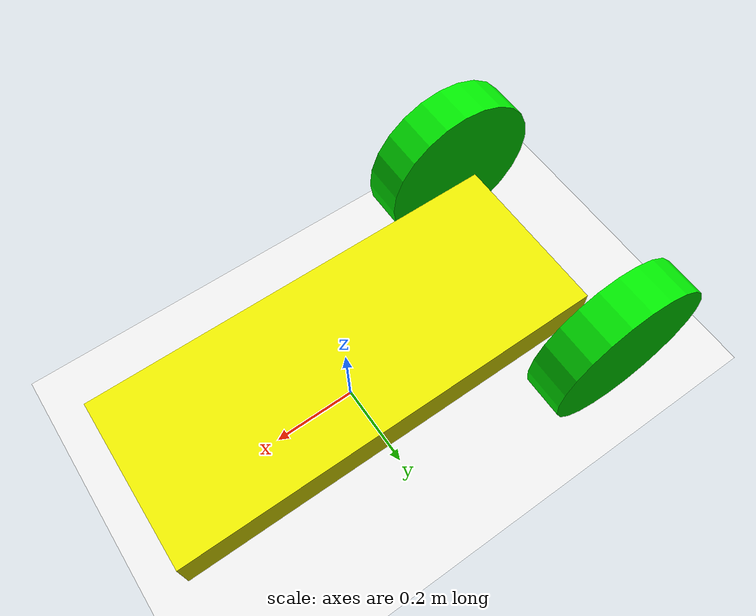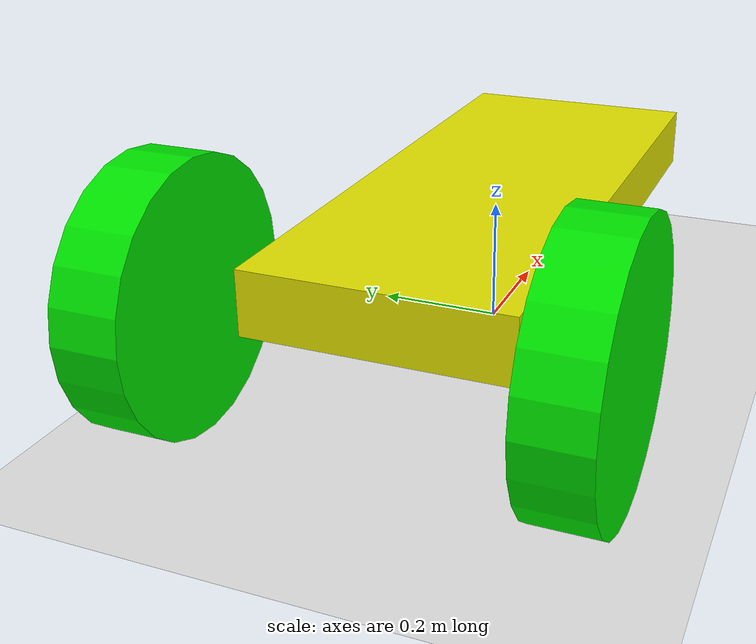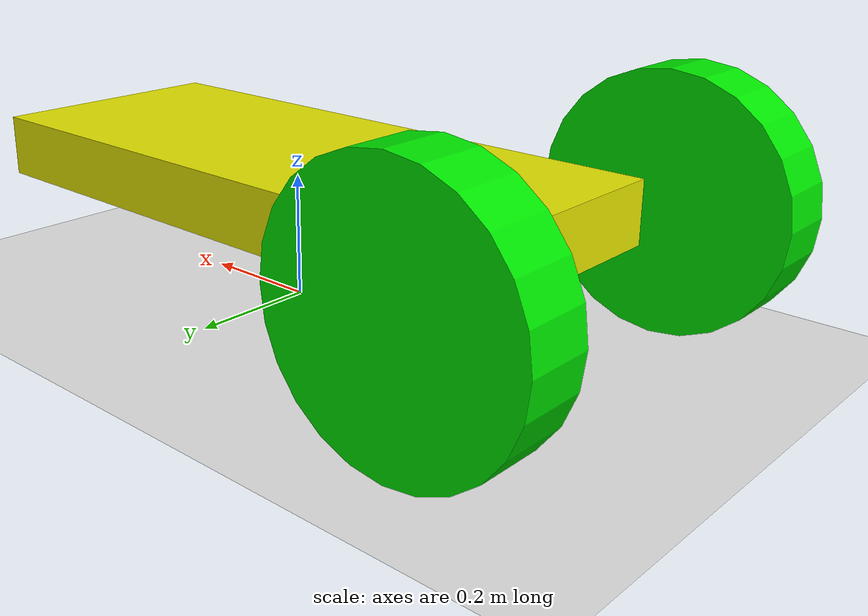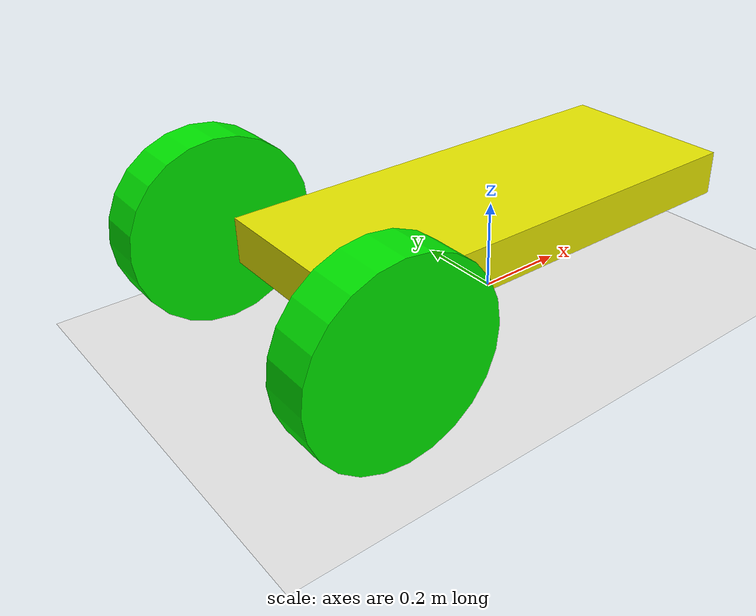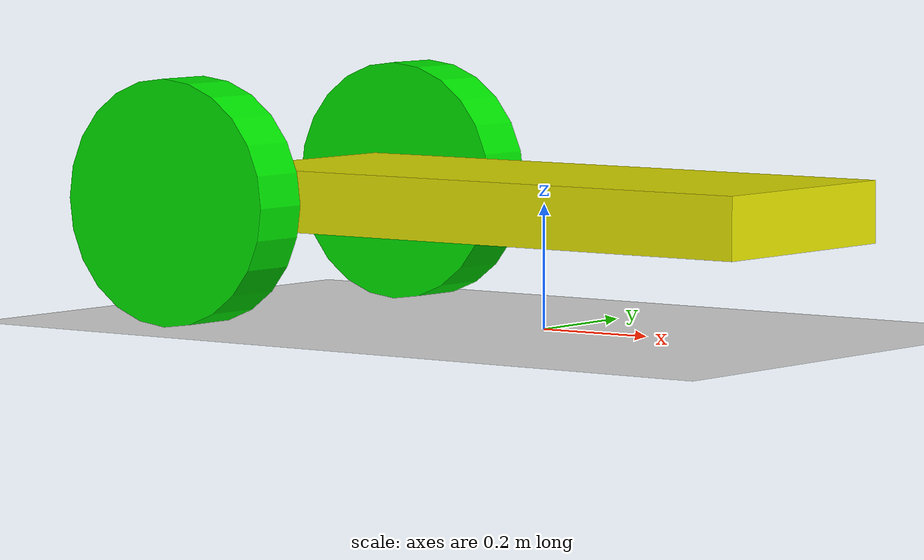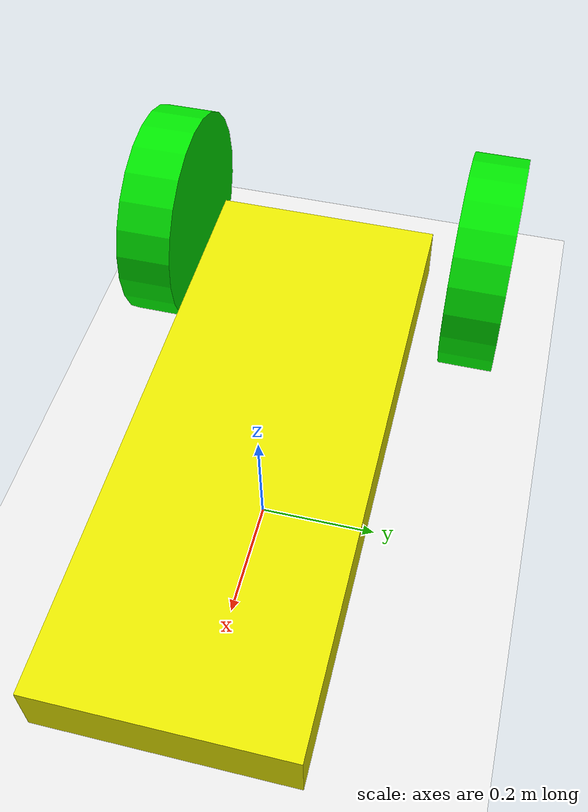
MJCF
<mujoco>
  <option gravity="0 0 -9.8"/>
  <worldbody>
    <light diffuse=".5 .5 .5" pos="0 0 3" dir="0 0 -1"/>
    <geom type="plane" size="5 5 0.1" rgba=".9 .9 .9 1"/>
    <body name="chassis" pos="0 0 0.2" euler="0 90 0">
      <joint type="free"/>
      <geom type="box" size=".05 .2 .5" rgba=".9 .9 0 1"/>
      <site name="marker" pos = "0 0 0 " size = "0.01" rgba = "1 0 0 1"/>

      <body pos="0 0.3 -0.5" euler="90 0 0">
        <joint name="left-wheel" type="hinge" axis="0 0 -1"/>
        <geom type="cylinder" size=".2 0.05" rgba="0 .9 0 1"/>
      </body>

      <body pos="0 -0.3 -0.5" euler="90 0 0">
        <joint name="right-wheel" type="hinge" axis="0 0 -1"/>
        <geom type="cylinder" size=".2 0.05" rgba="0 .9 0 1"/>
      </body>

    </body>
  </worldbody>
  <sensor>
    <framepos objtype = "site" objname = "marker"/>
  </sensor>
  <actuator>
    <velocity name="left-velocity-servo" joint="left-wheel" kv="100"/>
    <velocity name="right-velocity-servo" joint="right-wheel" kv="100"/>
  </actuator>
</mujoco>
